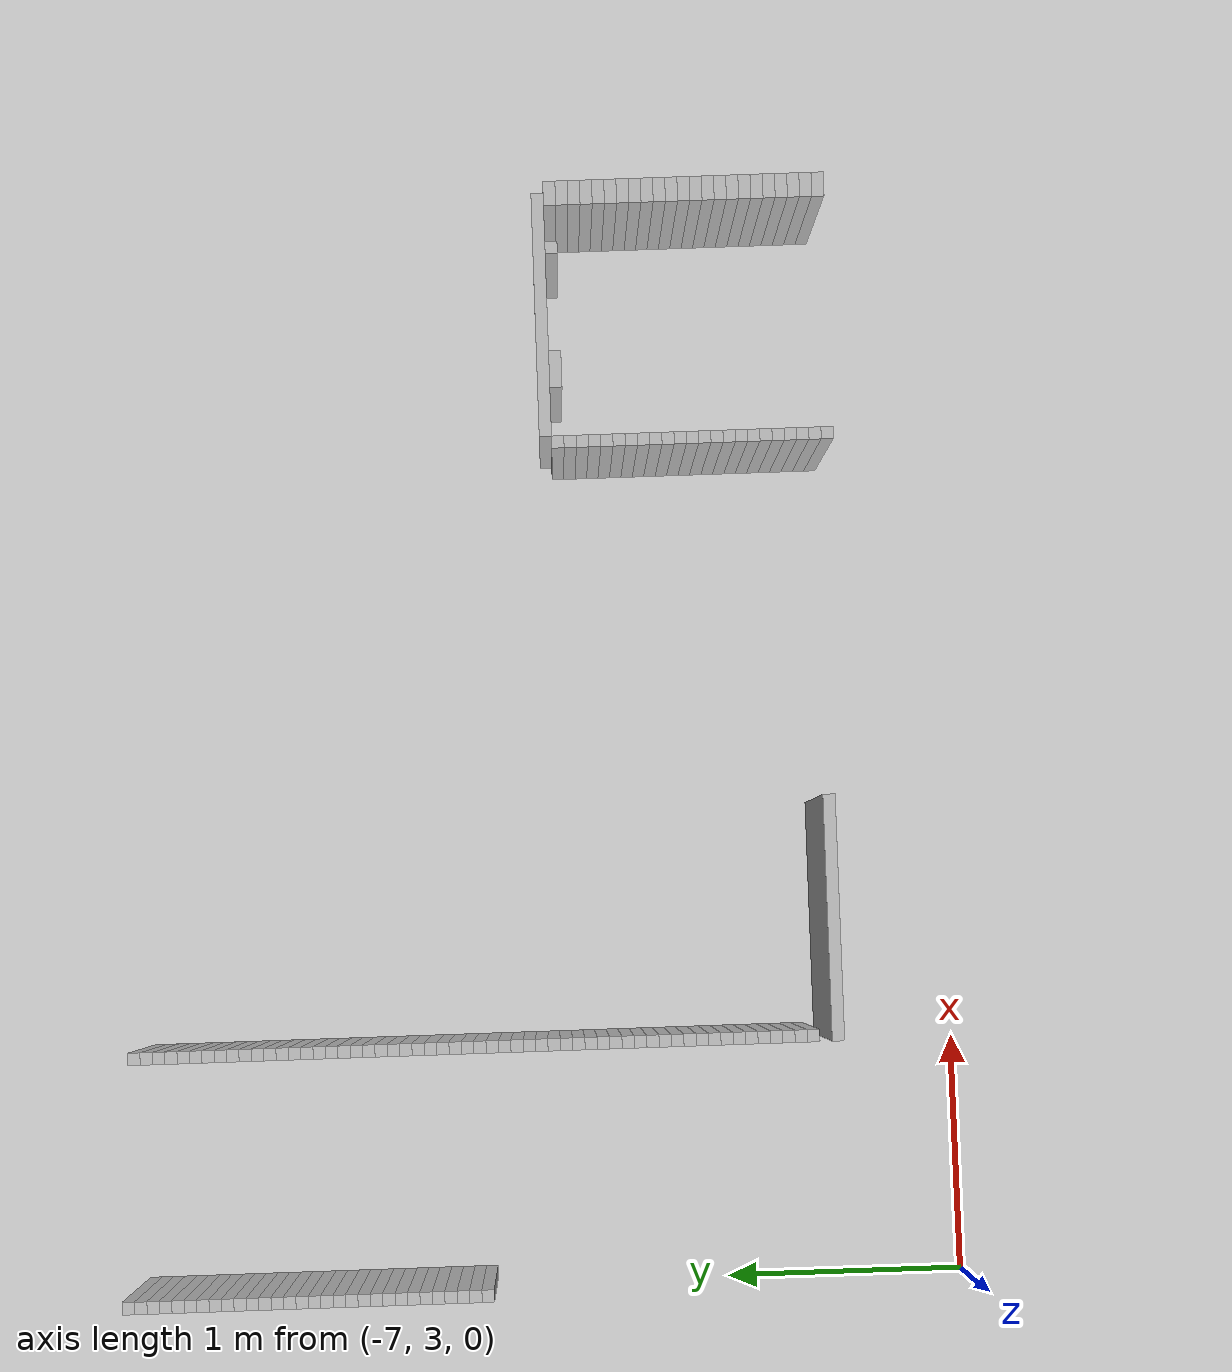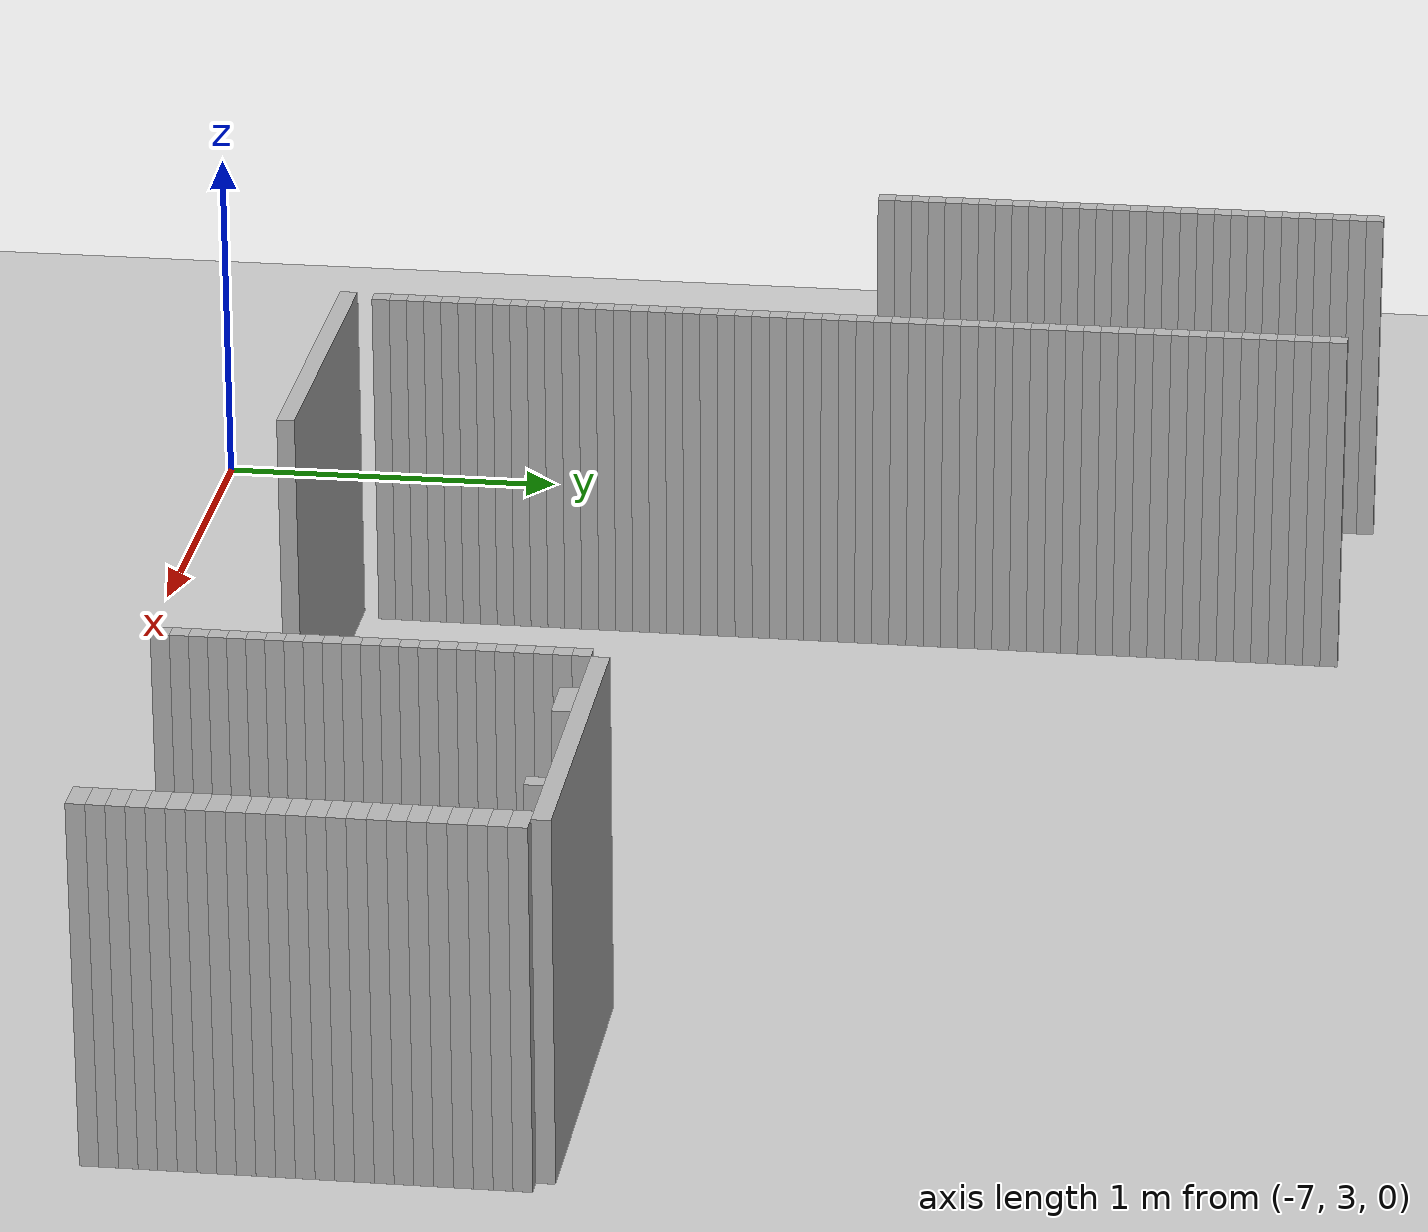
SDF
<sdf version="1.6">
 <world name="udh1_world">
  <include><uri>model://ground_plane</uri></include>
  <include><uri>model://sun</uri></include>
  <model name="wall_300">
   <static>true</static>
   <pose>-6.944999999999999 6.470000000000001 0.5 0 0 0</pose>
   <link name="link">
    <collision name="col"><geometry><box><size>0.05 0.05 1</size></box></geometry></collision>
    <visual name="vis"><geometry><box><size>0.05 0.05 1</size></box></geometry></visual>
   </link>
  </model>
  <model name="wall_306">
   <static>true</static>
   <pose>-6.944999999999999 6.42 0.5 0 0 0</pose>
   <link name="link">
    <collision name="col"><geometry><box><size>0.05 0.05 1</size></box></geometry></collision>
    <visual name="vis"><geometry><box><size>0.05 0.05 1</size></box></geometry></visual>
   </link>
  </model>
  <model name="wall_307">
   <static>true</static>
   <pose>-5.944999999999999 6.42 0.5 0 0 0</pose>
   <link name="link">
    <collision name="col"><geometry><box><size>0.05 0.05 1</size></box></geometry></collision>
    <visual name="vis"><geometry><box><size>0.05 0.05 1</size></box></geometry></visual>
   </link>
  </model>
  <model name="wall_312">
   <static>true</static>
   <pose>-6.944999999999999 6.369999999999999 0.5 0 0 0</pose>
   <link name="link">
    <collision name="col"><geometry><box><size>0.05 0.05 1</size></box></geometry></collision>
    <visual name="vis"><geometry><box><size>0.05 0.05 1</size></box></geometry></visual>
   </link>
  </model>
  <model name="wall_313">
   <static>true</static>
   <pose>-5.944999999999999 6.369999999999999 0.5 0 0 0</pose>
   <link name="link">
    <collision name="col"><geometry><box><size>0.05 0.05 1</size></box></geometry></collision>
    <visual name="vis"><geometry><box><size>0.05 0.05 1</size></box></geometry></visual>
   </link>
  </model>
  <model name="wall_318">
   <static>true</static>
   <pose>-6.944999999999999 6.32 0.5 0 0 0</pose>
   <link name="link">
    <collision name="col"><geometry><box><size>0.05 0.05 1</size></box></geometry></collision>
    <visual name="vis"><geometry><box><size>0.05 0.05 1</size></box></geometry></visual>
   </link>
  </model>
  <model name="wall_319">
   <static>true</static>
   <pose>-5.944999999999999 6.32 0.5 0 0 0</pose>
   <link name="link">
    <collision name="col"><geometry><box><size>0.05 0.05 1</size></box></geometry></collision>
    <visual name="vis"><geometry><box><size>0.05 0.05 1</size></box></geometry></visual>
   </link>
  </model>
  <model name="wall_324">
   <static>true</static>
   <pose>-6.944999999999999 6.27 0.5 0 0 0</pose>
   <link name="link">
    <collision name="col"><geometry><box><size>0.05 0.05 1</size></box></geometry></collision>
    <visual name="vis"><geometry><box><size>0.05 0.05 1</size></box></geometry></visual>
   </link>
  </model>
  <model name="wall_325">
   <static>true</static>
   <pose>-5.944999999999999 6.27 0.5 0 0 0</pose>
   <link name="link">
    <collision name="col"><geometry><box><size>0.05 0.05 1</size></box></geometry></collision>
    <visual name="vis"><geometry><box><size>0.05 0.05 1</size></box></geometry></visual>
   </link>
  </model>
  <model name="wall_330">
   <static>true</static>
   <pose>-6.944999999999999 6.220000000000001 0.5 0 0 0</pose>
   <link name="link">
    <collision name="col"><geometry><box><size>0.05 0.05 1</size></box></geometry></collision>
    <visual name="vis"><geometry><box><size>0.05 0.05 1</size></box></geometry></visual>
   </link>
  </model>
  <model name="wall_331">
   <static>true</static>
   <pose>-5.944999999999999 6.220000000000001 0.5 0 0 0</pose>
   <link name="link">
    <collision name="col"><geometry><box><size>0.05 0.05 1</size></box></geometry></collision>
    <visual name="vis"><geometry><box><size>0.05 0.05 1</size></box></geometry></visual>
   </link>
  </model>
  <model name="wall_336">
   <static>true</static>
   <pose>-6.944999999999999 6.17 0.5 0 0 0</pose>
   <link name="link">
    <collision name="col"><geometry><box><size>0.05 0.05 1</size></box></geometry></collision>
    <visual name="vis"><geometry><box><size>0.05 0.05 1</size></box></geometry></visual>
   </link>
  </model>
  <model name="wall_337">
   <static>true</static>
   <pose>-5.944999999999999 6.17 0.5 0 0 0</pose>
   <link name="link">
    <collision name="col"><geometry><box><size>0.05 0.05 1</size></box></geometry></collision>
    <visual name="vis"><geometry><box><size>0.05 0.05 1</size></box></geometry></visual>
   </link>
  </model>
  <model name="wall_342">
   <static>true</static>
   <pose>-6.944999999999999 6.119999999999999 0.5 0 0 0</pose>
   <link name="link">
    <collision name="col"><geometry><box><size>0.05 0.05 1</size></box></geometry></collision>
    <visual name="vis"><geometry><box><size>0.05 0.05 1</size></box></geometry></visual>
   </link>
  </model>
  <model name="wall_343">
   <static>true</static>
   <pose>-5.944999999999999 6.119999999999999 0.5 0 0 0</pose>
   <link name="link">
    <collision name="col"><geometry><box><size>0.05 0.05 1</size></box></geometry></collision>
    <visual name="vis"><geometry><box><size>0.05 0.05 1</size></box></geometry></visual>
   </link>
  </model>
  <model name="wall_356">
   <static>true</static>
   <pose>-6.944999999999999 6.07 0.5 0 0 0</pose>
   <link name="link">
    <collision name="col"><geometry><box><size>0.05 0.05 1</size></box></geometry></collision>
    <visual name="vis"><geometry><box><size>0.05 0.05 1</size></box></geometry></visual>
   </link>
  </model>
  <model name="wall_357">
   <static>true</static>
   <pose>-5.944999999999999 6.07 0.5 0 0 0</pose>
   <link name="link">
    <collision name="col"><geometry><box><size>0.05 0.05 1</size></box></geometry></collision>
    <visual name="vis"><geometry><box><size>0.05 0.05 1</size></box></geometry></visual>
   </link>
  </model>
  <model name="wall_362">
   <static>true</static>
   <pose>-6.944999999999999 6.02 0.5 0 0 0</pose>
   <link name="link">
    <collision name="col"><geometry><box><size>0.05 0.05 1</size></box></geometry></collision>
    <visual name="vis"><geometry><box><size>0.05 0.05 1</size></box></geometry></visual>
   </link>
  </model>
  <model name="wall_363">
   <static>true</static>
   <pose>-5.944999999999999 6.02 0.5 0 0 0</pose>
   <link name="link">
    <collision name="col"><geometry><box><size>0.05 0.05 1</size></box></geometry></collision>
    <visual name="vis"><geometry><box><size>0.05 0.05 1</size></box></geometry></visual>
   </link>
  </model>
  <model name="wall_368">
   <static>true</static>
   <pose>-6.944999999999999 5.970000000000001 0.5 0 0 0</pose>
   <link name="link">
    <collision name="col"><geometry><box><size>0.05 0.05 1</size></box></geometry></collision>
    <visual name="vis"><geometry><box><size>0.05 0.05 1</size></box></geometry></visual>
   </link>
  </model>
  <model name="wall_369">
   <static>true</static>
   <pose>-5.944999999999999 5.970000000000001 0.5 0 0 0</pose>
   <link name="link">
    <collision name="col"><geometry><box><size>0.05 0.05 1</size></box></geometry></collision>
    <visual name="vis"><geometry><box><size>0.05 0.05 1</size></box></geometry></visual>
   </link>
  </model>
  <model name="wall_374">
   <static>true</static>
   <pose>-6.944999999999999 5.92 0.5 0 0 0</pose>
   <link name="link">
    <collision name="col"><geometry><box><size>0.05 0.05 1</size></box></geometry></collision>
    <visual name="vis"><geometry><box><size>0.05 0.05 1</size></box></geometry></visual>
   </link>
  </model>
  <model name="wall_375">
   <static>true</static>
   <pose>-5.944999999999999 5.92 0.5 0 0 0</pose>
   <link name="link">
    <collision name="col"><geometry><box><size>0.05 0.05 1</size></box></geometry></collision>
    <visual name="vis"><geometry><box><size>0.05 0.05 1</size></box></geometry></visual>
   </link>
  </model>
  <model name="wall_380">
   <static>true</static>
   <pose>-6.944999999999999 5.869999999999999 0.5 0 0 0</pose>
   <link name="link">
    <collision name="col"><geometry><box><size>0.05 0.05 1</size></box></geometry></collision>
    <visual name="vis"><geometry><box><size>0.05 0.05 1</size></box></geometry></visual>
   </link>
  </model>
  <model name="wall_381">
   <static>true</static>
   <pose>-5.944999999999999 5.869999999999999 0.5 0 0 0</pose>
   <link name="link">
    <collision name="col"><geometry><box><size>0.05 0.05 1</size></box></geometry></collision>
    <visual name="vis"><geometry><box><size>0.05 0.05 1</size></box></geometry></visual>
   </link>
  </model>
  <model name="wall_386">
   <static>true</static>
   <pose>-6.944999999999999 5.82 0.5 0 0 0</pose>
   <link name="link">
    <collision name="col"><geometry><box><size>0.05 0.05 1</size></box></geometry></collision>
    <visual name="vis"><geometry><box><size>0.05 0.05 1</size></box></geometry></visual>
   </link>
  </model>
  <model name="wall_387">
   <static>true</static>
   <pose>-5.944999999999999 5.82 0.5 0 0 0</pose>
   <link name="link">
    <collision name="col"><geometry><box><size>0.05 0.05 1</size></box></geometry></collision>
    <visual name="vis"><geometry><box><size>0.05 0.05 1</size></box></geometry></visual>
   </link>
  </model>
  <model name="wall_392">
   <static>true</static>
   <pose>-6.944999999999999 5.77 0.5 0 0 0</pose>
   <link name="link">
    <collision name="col"><geometry><box><size>0.05 0.05 1</size></box></geometry></collision>
    <visual name="vis"><geometry><box><size>0.05 0.05 1</size></box></geometry></visual>
   </link>
  </model>
  <model name="wall_393">
   <static>true</static>
   <pose>-5.944999999999999 5.77 0.5 0 0 0</pose>
   <link name="link">
    <collision name="col"><geometry><box><size>0.05 0.05 1</size></box></geometry></collision>
    <visual name="vis"><geometry><box><size>0.05 0.05 1</size></box></geometry></visual>
   </link>
  </model>
  <model name="wall_398">
   <static>true</static>
   <pose>-6.944999999999999 5.720000000000001 0.5 0 0 0</pose>
   <link name="link">
    <collision name="col"><geometry><box><size>0.05 0.05 1</size></box></geometry></collision>
    <visual name="vis"><geometry><box><size>0.05 0.05 1</size></box></geometry></visual>
   </link>
  </model>
  <model name="wall_399">
   <static>true</static>
   <pose>-5.944999999999999 5.720000000000001 0.5 0 0 0</pose>
   <link name="link">
    <collision name="col"><geometry><box><size>0.05 0.05 1</size></box></geometry></collision>
    <visual name="vis"><geometry><box><size>0.05 0.05 1</size></box></geometry></visual>
   </link>
  </model>
  <model name="wall_404">
   <static>true</static>
   <pose>-6.944999999999999 5.67 0.5 0 0 0</pose>
   <link name="link">
    <collision name="col"><geometry><box><size>0.05 0.05 1</size></box></geometry></collision>
    <visual name="vis"><geometry><box><size>0.05 0.05 1</size></box></geometry></visual>
   </link>
  </model>
  <model name="wall_405">
   <static>true</static>
   <pose>-5.944999999999999 5.67 0.5 0 0 0</pose>
   <link name="link">
    <collision name="col"><geometry><box><size>0.05 0.05 1</size></box></geometry></collision>
    <visual name="vis"><geometry><box><size>0.05 0.05 1</size></box></geometry></visual>
   </link>
  </model>
  <model name="wall_410">
   <static>true</static>
   <pose>-6.944999999999999 5.619999999999999 0.5 0 0 0</pose>
   <link name="link">
    <collision name="col"><geometry><box><size>0.05 0.05 1</size></box></geometry></collision>
    <visual name="vis"><geometry><box><size>0.05 0.05 1</size></box></geometry></visual>
   </link>
  </model>
  <model name="wall_411">
   <static>true</static>
   <pose>-5.944999999999999 5.619999999999999 0.5 0 0 0</pose>
   <link name="link">
    <collision name="col"><geometry><box><size>0.05 0.05 1</size></box></geometry></collision>
    <visual name="vis"><geometry><box><size>0.05 0.05 1</size></box></geometry></visual>
   </link>
  </model>
  <model name="wall_416">
   <static>true</static>
   <pose>-6.944999999999999 5.57 0.5 0 0 0</pose>
   <link name="link">
    <collision name="col"><geometry><box><size>0.05 0.05 1</size></box></geometry></collision>
    <visual name="vis"><geometry><box><size>0.05 0.05 1</size></box></geometry></visual>
   </link>
  </model>
  <model name="wall_417">
   <static>true</static>
   <pose>-5.944999999999999 5.57 0.5 0 0 0</pose>
   <link name="link">
    <collision name="col"><geometry><box><size>0.05 0.05 1</size></box></geometry></collision>
    <visual name="vis"><geometry><box><size>0.05 0.05 1</size></box></geometry></visual>
   </link>
  </model>
  <model name="wall_423">
   <static>true</static>
   <pose>-6.944999999999999 5.52 0.5 0 0 0</pose>
   <link name="link">
    <collision name="col"><geometry><box><size>0.05 0.05 1</size></box></geometry></collision>
    <visual name="vis"><geometry><box><size>0.05 0.05 1</size></box></geometry></visual>
   </link>
  </model>
  <model name="wall_424">
   <static>true</static>
   <pose>-5.944999999999999 5.52 0.5 0 0 0</pose>
   <link name="link">
    <collision name="col"><geometry><box><size>0.05 0.05 1</size></box></geometry></collision>
    <visual name="vis"><geometry><box><size>0.05 0.05 1</size></box></geometry></visual>
   </link>
  </model>
  <model name="wall_432">
   <static>true</static>
   <pose>-6.944999999999999 5.470000000000001 0.5 0 0 0</pose>
   <link name="link">
    <collision name="col"><geometry><box><size>0.05 0.05 1</size></box></geometry></collision>
    <visual name="vis"><geometry><box><size>0.05 0.05 1</size></box></geometry></visual>
   </link>
  </model>
  <model name="wall_433">
   <static>true</static>
   <pose>-5.944999999999999 5.470000000000001 0.5 0 0 0</pose>
   <link name="link">
    <collision name="col"><geometry><box><size>0.05 0.05 1</size></box></geometry></collision>
    <visual name="vis"><geometry><box><size>0.05 0.05 1</size></box></geometry></visual>
   </link>
  </model>
  <model name="wall_441">
   <static>true</static>
   <pose>-6.944999999999999 5.42 0.5 0 0 0</pose>
   <link name="link">
    <collision name="col"><geometry><box><size>0.05 0.05 1</size></box></geometry></collision>
    <visual name="vis"><geometry><box><size>0.05 0.05 1</size></box></geometry></visual>
   </link>
  </model>
  <model name="wall_442">
   <static>true</static>
   <pose>-5.944999999999999 5.42 0.5 0 0 0</pose>
   <link name="link">
    <collision name="col"><geometry><box><size>0.05 0.05 1</size></box></geometry></collision>
    <visual name="vis"><geometry><box><size>0.05 0.05 1</size></box></geometry></visual>
   </link>
  </model>
  <model name="wall_450">
   <static>true</static>
   <pose>-6.944999999999999 5.369999999999999 0.5 0 0 0</pose>
   <link name="link">
    <collision name="col"><geometry><box><size>0.05 0.05 1</size></box></geometry></collision>
    <visual name="vis"><geometry><box><size>0.05 0.05 1</size></box></geometry></visual>
   </link>
  </model>
  <model name="wall_451">
   <static>true</static>
   <pose>-5.944999999999999 5.369999999999999 0.5 0 0 0</pose>
   <link name="link">
    <collision name="col"><geometry><box><size>0.05 0.05 1</size></box></geometry></collision>
    <visual name="vis"><geometry><box><size>0.05 0.05 1</size></box></geometry></visual>
   </link>
  </model>
  <model name="wall_459">
   <static>true</static>
   <pose>-6.944999999999999 5.32 0.5 0 0 0</pose>
   <link name="link">
    <collision name="col"><geometry><box><size>0.05 0.05 1</size></box></geometry></collision>
    <visual name="vis"><geometry><box><size>0.05 0.05 1</size></box></geometry></visual>
   </link>
  </model>
  <model name="wall_460">
   <static>true</static>
   <pose>-5.944999999999999 5.32 0.5 0 0 0</pose>
   <link name="link">
    <collision name="col"><geometry><box><size>0.05 0.05 1</size></box></geometry></collision>
    <visual name="vis"><geometry><box><size>0.05 0.05 1</size></box></geometry></visual>
   </link>
  </model>
  <model name="wall_468">
   <static>true</static>
   <pose>-6.944999999999999 5.27 0.5 0 0 0</pose>
   <link name="link">
    <collision name="col"><geometry><box><size>0.05 0.05 1</size></box></geometry></collision>
    <visual name="vis"><geometry><box><size>0.05 0.05 1</size></box></geometry></visual>
   </link>
  </model>
  <model name="wall_469">
   <static>true</static>
   <pose>-5.944999999999999 5.27 0.5 0 0 0</pose>
   <link name="link">
    <collision name="col"><geometry><box><size>0.05 0.05 1</size></box></geometry></collision>
    <visual name="vis"><geometry><box><size>0.05 0.05 1</size></box></geometry></visual>
   </link>
  </model>
  <model name="wall_477">
   <static>true</static>
   <pose>-6.944999999999999 5.220000000000001 0.5 0 0 0</pose>
   <link name="link">
    <collision name="col"><geometry><box><size>0.05 0.05 1</size></box></geometry></collision>
    <visual name="vis"><geometry><box><size>0.05 0.05 1</size></box></geometry></visual>
   </link>
  </model>
  <model name="wall_478">
   <static>true</static>
   <pose>-5.944999999999999 5.220000000000001 0.5 0 0 0</pose>
   <link name="link">
    <collision name="col"><geometry><box><size>0.05 0.05 1</size></box></geometry></collision>
    <visual name="vis"><geometry><box><size>0.05 0.05 1</size></box></geometry></visual>
   </link>
  </model>
  <model name="wall_486">
   <static>true</static>
   <pose>-6.944999999999999 5.17 0.5 0 0 0</pose>
   <link name="link">
    <collision name="col"><geometry><box><size>0.05 0.05 1</size></box></geometry></collision>
    <visual name="vis"><geometry><box><size>0.05 0.05 1</size></box></geometry></visual>
   </link>
  </model>
  <model name="wall_487">
   <static>true</static>
   <pose>-5.944999999999999 5.17 0.5 0 0 0</pose>
   <link name="link">
    <collision name="col"><geometry><box><size>0.05 0.05 1</size></box></geometry></collision>
    <visual name="vis"><geometry><box><size>0.05 0.05 1</size></box></geometry></visual>
   </link>
  </model>
  <model name="wall_495">
   <static>true</static>
   <pose>-6.944999999999999 5.119999999999999 0.5 0 0 0</pose>
   <link name="link">
    <collision name="col"><geometry><box><size>0.05 0.05 1</size></box></geometry></collision>
    <visual name="vis"><geometry><box><size>0.05 0.05 1</size></box></geometry></visual>
   </link>
  </model>
  <model name="wall_496">
   <static>true</static>
   <pose>-5.944999999999999 5.119999999999999 0.5 0 0 0</pose>
   <link name="link">
    <collision name="col"><geometry><box><size>0.05 0.05 1</size></box></geometry></collision>
    <visual name="vis"><geometry><box><size>0.05 0.05 1</size></box></geometry></visual>
   </link>
  </model>
  <model name="wall_504">
   <static>true</static>
   <pose>-6.944999999999999 5.07 0.5 0 0 0</pose>
   <link name="link">
    <collision name="col"><geometry><box><size>0.05 0.05 1</size></box></geometry></collision>
    <visual name="vis"><geometry><box><size>0.05 0.05 1</size></box></geometry></visual>
   </link>
  </model>
  <model name="wall_505">
   <static>true</static>
   <pose>-5.944999999999999 5.07 0.5 0 0 0</pose>
   <link name="link">
    <collision name="col"><geometry><box><size>0.05 0.05 1</size></box></geometry></collision>
    <visual name="vis"><geometry><box><size>0.05 0.05 1</size></box></geometry></visual>
   </link>
  </model>
  <model name="wall_513">
   <static>true</static>
   <pose>-6.944999999999999 5.02 0.5 0 0 0</pose>
   <link name="link">
    <collision name="col"><geometry><box><size>0.05 0.05 1</size></box></geometry></collision>
    <visual name="vis"><geometry><box><size>0.05 0.05 1</size></box></geometry></visual>
   </link>
  </model>
  <model name="wall_514">
   <static>true</static>
   <pose>-5.944999999999999 5.02 0.5 0 0 0</pose>
   <link name="link">
    <collision name="col"><geometry><box><size>0.05 0.05 1</size></box></geometry></collision>
    <visual name="vis"><geometry><box><size>0.05 0.05 1</size></box></geometry></visual>
   </link>
  </model>
  <model name="wall_523">
   <static>true</static>
   <pose>-5.944999999999999 4.970000000000001 0.5 0 0 0</pose>
   <link name="link">
    <collision name="col"><geometry><box><size>0.05 0.05 1</size></box></geometry></collision>
    <visual name="vis"><geometry><box><size>0.05 0.05 1</size></box></geometry></visual>
   </link>
  </model>
  <model name="wall_532">
   <static>true</static>
   <pose>-5.944999999999999 4.92 0.5 0 0 0</pose>
   <link name="link">
    <collision name="col"><geometry><box><size>0.05 0.05 1</size></box></geometry></collision>
    <visual name="vis"><geometry><box><size>0.05 0.05 1</size></box></geometry></visual>
   </link>
  </model>
  <model name="wall_541">
   <static>true</static>
   <pose>-5.944999999999999 4.869999999999999 0.5 0 0 0</pose>
   <link name="link">
    <collision name="col"><geometry><box><size>0.05 0.05 1</size></box></geometry></collision>
    <visual name="vis"><geometry><box><size>0.05 0.05 1</size></box></geometry></visual>
   </link>
  </model>
  <model name="wall_550">
   <static>true</static>
   <pose>-5.944999999999999 4.82 0.5 0 0 0</pose>
   <link name="link">
    <collision name="col"><geometry><box><size>0.05 0.05 1</size></box></geometry></collision>
    <visual name="vis"><geometry><box><size>0.05 0.05 1</size></box></geometry></visual>
   </link>
  </model>
  <model name="wall_558">
   <static>true</static>
   <pose>-5.944999999999999 4.77 0.5 0 0 0</pose>
   <link name="link">
    <collision name="col"><geometry><box><size>0.05 0.05 1</size></box></geometry></collision>
    <visual name="vis"><geometry><box><size>0.05 0.05 1</size></box></geometry></visual>
   </link>
  </model>
  <model name="wall_567">
   <static>true</static>
   <pose>-5.944999999999999 4.720000000000001 0.5 0 0 0</pose>
   <link name="link">
    <collision name="col"><geometry><box><size>0.05 0.05 1</size></box></geometry></collision>
    <visual name="vis"><geometry><box><size>0.05 0.05 1</size></box></geometry></visual>
   </link>
  </model>
  <model name="wall_576">
   <static>true</static>
   <pose>-5.944999999999999 4.67 0.5 0 0 0</pose>
   <link name="link">
    <collision name="col"><geometry><box><size>0.05 0.05 1</size></box></geometry></collision>
    <visual name="vis"><geometry><box><size>0.05 0.05 1</size></box></geometry></visual>
   </link>
  </model>
  <model name="wall_577">
   <static>true</static>
   <pose>-2.969999999999999 4.67 0.5 0 0 0</pose>
   <link name="link">
    <collision name="col"><geometry><box><size>1.0 0.05 1</size></box></geometry></collision>
    <visual name="vis"><geometry><box><size>1.0 0.05 1</size></box></geometry></visual>
   </link>
  </model>
  <model name="wall_586">
   <static>true</static>
   <pose>-5.944999999999999 4.619999999999999 0.5 0 0 0</pose>
   <link name="link">
    <collision name="col"><geometry><box><size>0.05 0.05 1</size></box></geometry></collision>
    <visual name="vis"><geometry><box><size>0.05 0.05 1</size></box></geometry></visual>
   </link>
  </model>
  <model name="wall_587">
   <static>true</static>
   <pose>-3.494999999999999 4.619999999999999 0.5 0 0 0</pose>
   <link name="link">
    <collision name="col"><geometry><box><size>0.05 0.05 1</size></box></geometry></collision>
    <visual name="vis"><geometry><box><size>0.05 0.05 1</size></box></geometry></visual>
   </link>
  </model>
  <model name="wall_588">
   <static>true</static>
   <pose>-3.1949999999999994 4.619999999999999 0.5 0 0 0</pose>
   <link name="link">
    <collision name="col"><geometry><box><size>0.15000000000000002 0.05 1</size></box></geometry></collision>
    <visual name="vis"><geometry><box><size>0.15000000000000002 0.05 1</size></box></geometry></visual>
   </link>
  </model>
  <model name="wall_589">
   <static>true</static>
   <pose>-2.6949999999999994 4.619999999999999 0.5 0 0 0</pose>
   <link name="link">
    <collision name="col"><geometry><box><size>0.05 0.05 1</size></box></geometry></collision>
    <visual name="vis"><geometry><box><size>0.05 0.05 1</size></box></geometry></visual>
   </link>
  </model>
  <model name="wall_590">
   <static>true</static>
   <pose>-2.469999999999999 4.619999999999999 0.5 0 0 0</pose>
   <link name="link">
    <collision name="col"><geometry><box><size>0.1 0.05 1</size></box></geometry></collision>
    <visual name="vis"><geometry><box><size>0.1 0.05 1</size></box></geometry></visual>
   </link>
  </model>
  <model name="wall_599">
   <static>true</static>
   <pose>-5.944999999999999 4.57 0.5 0 0 0</pose>
   <link name="link">
    <collision name="col"><geometry><box><size>0.05 0.05 1</size></box></geometry></collision>
    <visual name="vis"><geometry><box><size>0.05 0.05 1</size></box></geometry></visual>
   </link>
  </model>
  <model name="wall_600">
   <static>true</static>
   <pose>-3.494999999999999 4.57 0.5 0 0 0</pose>
   <link name="link">
    <collision name="col"><geometry><box><size>0.05 0.05 1</size></box></geometry></collision>
    <visual name="vis"><geometry><box><size>0.05 0.05 1</size></box></geometry></visual>
   </link>
  </model>
  <model name="wall_601">
   <static>true</static>
   <pose>-2.469999999999999 4.57 0.5 0 0 0</pose>
   <link name="link">
    <collision name="col"><geometry><box><size>0.1 0.05 1</size></box></geometry></collision>
    <visual name="vis"><geometry><box><size>0.1 0.05 1</size></box></geometry></visual>
   </link>
  </model>
  <model name="wall_612">
   <static>true</static>
   <pose>-5.944999999999999 4.52 0.5 0 0 0</pose>
   <link name="link">
    <collision name="col"><geometry><box><size>0.05 0.05 1</size></box></geometry></collision>
    <visual name="vis"><geometry><box><size>0.05 0.05 1</size></box></geometry></visual>
   </link>
  </model>
  <model name="wall_613">
   <static>true</static>
   <pose>-3.494999999999999 4.52 0.5 0 0 0</pose>
   <link name="link">
    <collision name="col"><geometry><box><size>0.05 0.05 1</size></box></geometry></collision>
    <visual name="vis"><geometry><box><size>0.05 0.05 1</size></box></geometry></visual>
   </link>
  </model>
  <model name="wall_614">
   <static>true</static>
   <pose>-2.469999999999999 4.52 0.5 0 0 0</pose>
   <link name="link">
    <collision name="col"><geometry><box><size>0.1 0.05 1</size></box></geometry></collision>
    <visual name="vis"><geometry><box><size>0.1 0.05 1</size></box></geometry></visual>
   </link>
  </model>
  <model name="wall_622">
   <static>true</static>
   <pose>-5.944999999999999 4.470000000000001 0.5 0 0 0</pose>
   <link name="link">
    <collision name="col"><geometry><box><size>0.05 0.05 1</size></box></geometry></collision>
    <visual name="vis"><geometry><box><size>0.05 0.05 1</size></box></geometry></visual>
   </link>
  </model>
  <model name="wall_623">
   <static>true</static>
   <pose>-3.494999999999999 4.470000000000001 0.5 0 0 0</pose>
   <link name="link">
    <collision name="col"><geometry><box><size>0.05 0.05 1</size></box></geometry></collision>
    <visual name="vis"><geometry><box><size>0.05 0.05 1</size></box></geometry></visual>
   </link>
  </model>
  <model name="wall_624">
   <static>true</static>
   <pose>-2.469999999999999 4.470000000000001 0.5 0 0 0</pose>
   <link name="link">
    <collision name="col"><geometry><box><size>0.1 0.05 1</size></box></geometry></collision>
    <visual name="vis"><geometry><box><size>0.1 0.05 1</size></box></geometry></visual>
   </link>
  </model>
  <model name="wall_632">
   <static>true</static>
   <pose>-5.944999999999999 4.42 0.5 0 0 0</pose>
   <link name="link">
    <collision name="col"><geometry><box><size>0.05 0.05 1</size></box></geometry></collision>
    <visual name="vis"><geometry><box><size>0.05 0.05 1</size></box></geometry></visual>
   </link>
  </model>
  <model name="wall_633">
   <static>true</static>
   <pose>-3.494999999999999 4.42 0.5 0 0 0</pose>
   <link name="link">
    <collision name="col"><geometry><box><size>0.05 0.05 1</size></box></geometry></collision>
    <visual name="vis"><geometry><box><size>0.05 0.05 1</size></box></geometry></visual>
   </link>
  </model>
  <model name="wall_634">
   <static>true</static>
   <pose>-2.469999999999999 4.42 0.5 0 0 0</pose>
   <link name="link">
    <collision name="col"><geometry><box><size>0.1 0.05 1</size></box></geometry></collision>
    <visual name="vis"><geometry><box><size>0.1 0.05 1</size></box></geometry></visual>
   </link>
  </model>
  <model name="wall_641">
   <static>true</static>
   <pose>-5.944999999999999 4.369999999999999 0.5 0 0 0</pose>
   <link name="link">
    <collision name="col"><geometry><box><size>0.05 0.05 1</size></box></geometry></collision>
    <visual name="vis"><geometry><box><size>0.05 0.05 1</size></box></geometry></visual>
   </link>
  </model>
  <model name="wall_642">
   <static>true</static>
   <pose>-3.494999999999999 4.369999999999999 0.5 0 0 0</pose>
   <link name="link">
    <collision name="col"><geometry><box><size>0.05 0.05 1</size></box></geometry></collision>
    <visual name="vis"><geometry><box><size>0.05 0.05 1</size></box></geometry></visual>
   </link>
  </model>
  <model name="wall_643">
   <static>true</static>
   <pose>-2.469999999999999 4.369999999999999 0.5 0 0 0</pose>
   <link name="link">
    <collision name="col"><geometry><box><size>0.1 0.05 1</size></box></geometry></collision>
    <visual name="vis"><geometry><box><size>0.1 0.05 1</size></box></geometry></visual>
   </link>
  </model>
  <model name="wall_651">
   <static>true</static>
   <pose>-5.944999999999999 4.32 0.5 0 0 0</pose>
   <link name="link">
    <collision name="col"><geometry><box><size>0.05 0.05 1</size></box></geometry></collision>
    <visual name="vis"><geometry><box><size>0.05 0.05 1</size></box></geometry></visual>
   </link>
  </model>
  <model name="wall_652">
   <static>true</static>
   <pose>-3.494999999999999 4.32 0.5 0 0 0</pose>
   <link name="link">
    <collision name="col"><geometry><box><size>0.05 0.05 1</size></box></geometry></collision>
    <visual name="vis"><geometry><box><size>0.05 0.05 1</size></box></geometry></visual>
   </link>
  </model>
  <model name="wall_653">
   <static>true</static>
   <pose>-2.469999999999999 4.32 0.5 0 0 0</pose>
   <link name="link">
    <collision name="col"><geometry><box><size>0.1 0.05 1</size></box></geometry></collision>
    <visual name="vis"><geometry><box><size>0.1 0.05 1</size></box></geometry></visual>
   </link>
  </model>
  <model name="wall_661">
   <static>true</static>
   <pose>-5.944999999999999 4.27 0.5 0 0 0</pose>
   <link name="link">
    <collision name="col"><geometry><box><size>0.05 0.05 1</size></box></geometry></collision>
    <visual name="vis"><geometry><box><size>0.05 0.05 1</size></box></geometry></visual>
   </link>
  </model>
  <model name="wall_662">
   <static>true</static>
   <pose>-3.494999999999999 4.27 0.5 0 0 0</pose>
   <link name="link">
    <collision name="col"><geometry><box><size>0.05 0.05 1</size></box></geometry></collision>
    <visual name="vis"><geometry><box><size>0.05 0.05 1</size></box></geometry></visual>
   </link>
  </model>
  <model name="wall_663">
   <static>true</static>
   <pose>-2.469999999999999 4.27 0.5 0 0 0</pose>
   <link name="link">
    <collision name="col"><geometry><box><size>0.1 0.05 1</size></box></geometry></collision>
    <visual name="vis"><geometry><box><size>0.1 0.05 1</size></box></geometry></visual>
   </link>
  </model>
  <model name="wall_670">
   <static>true</static>
   <pose>-5.944999999999999 4.220000000000001 0.5 0 0 0</pose>
   <link name="link">
    <collision name="col"><geometry><box><size>0.05 0.05 1</size></box></geometry></collision>
    <visual name="vis"><geometry><box><size>0.05 0.05 1</size></box></geometry></visual>
   </link>
  </model>
  <model name="wall_671">
   <static>true</static>
   <pose>-3.494999999999999 4.220000000000001 0.5 0 0 0</pose>
   <link name="link">
    <collision name="col"><geometry><box><size>0.05 0.05 1</size></box></geometry></collision>
    <visual name="vis"><geometry><box><size>0.05 0.05 1</size></box></geometry></visual>
   </link>
  </model>
  <model name="wall_672">
   <static>true</static>
   <pose>-2.469999999999999 4.220000000000001 0.5 0 0 0</pose>
   <link name="link">
    <collision name="col"><geometry><box><size>0.1 0.05 1</size></box></geometry></collision>
    <visual name="vis"><geometry><box><size>0.1 0.05 1</size></box></geometry></visual>
   </link>
  </model>
  <model name="wall_680">
   <static>true</static>
   <pose>-5.944999999999999 4.17 0.5 0 0 0</pose>
   <link name="link">
    <collision name="col"><geometry><box><size>0.05 0.05 1</size></box></geometry></collision>
    <visual name="vis"><geometry><box><size>0.05 0.05 1</size></box></geometry></visual>
   </link>
  </model>
  <model name="wall_681">
   <static>true</static>
   <pose>-3.494999999999999 4.17 0.5 0 0 0</pose>
   <link name="link">
    <collision name="col"><geometry><box><size>0.05 0.05 1</size></box></geometry></collision>
    <visual name="vis"><geometry><box><size>0.05 0.05 1</size></box></geometry></visual>
   </link>
  </model>
  <model name="wall_682">
   <static>true</static>
   <pose>-2.469999999999999 4.17 0.5 0 0 0</pose>
   <link name="link">
    <collision name="col"><geometry><box><size>0.1 0.05 1</size></box></geometry></collision>
    <visual name="vis"><geometry><box><size>0.1 0.05 1</size></box></geometry></visual>
   </link>
  </model>
  <model name="wall_689">
   <static>true</static>
   <pose>-5.944999999999999 4.119999999999999 0.5 0 0 0</pose>
   <link name="link">
    <collision name="col"><geometry><box><size>0.05 0.05 1</size></box></geometry></collision>
    <visual name="vis"><geometry><box><size>0.05 0.05 1</size></box></geometry></visual>
   </link>
  </model>
  <model name="wall_690">
   <static>true</static>
   <pose>-3.494999999999999 4.119999999999999 0.5 0 0 0</pose>
   <link name="link">
    <collision name="col"><geometry><box><size>0.05 0.05 1</size></box></geometry></collision>
    <visual name="vis"><geometry><box><size>0.05 0.05 1</size></box></geometry></visual>
   </link>
  </model>
  <model name="wall_691">
   <static>true</static>
   <pose>-2.469999999999999 4.119999999999999 0.5 0 0 0</pose>
   <link name="link">
    <collision name="col"><geometry><box><size>0.1 0.05 1</size></box></geometry></collision>
    <visual name="vis"><geometry><box><size>0.1 0.05 1</size></box></geometry></visual>
   </link>
  </model>
  <model name="wall_699">
   <static>true</static>
   <pose>-5.944999999999999 4.07 0.5 0 0 0</pose>
   <link name="link">
    <collision name="col"><geometry><box><size>0.05 0.05 1</size></box></geometry></collision>
    <visual name="vis"><geometry><box><size>0.05 0.05 1</size></box></geometry></visual>
   </link>
  </model>
  <model name="wall_700">
   <static>true</static>
   <pose>-3.494999999999999 4.07 0.5 0 0 0</pose>
   <link name="link">
    <collision name="col"><geometry><box><size>0.05 0.05 1</size></box></geometry></collision>
    <visual name="vis"><geometry><box><size>0.05 0.05 1</size></box></geometry></visual>
   </link>
  </model>
  <model name="wall_701">
   <static>true</static>
   <pose>-2.469999999999999 4.07 0.5 0 0 0</pose>
   <link name="link">
    <collision name="col"><geometry><box><size>0.1 0.05 1</size></box></geometry></collision>
    <visual name="vis"><geometry><box><size>0.1 0.05 1</size></box></geometry></visual>
   </link>
  </model>
  <model name="wall_709">
   <static>true</static>
   <pose>-5.944999999999999 4.02 0.5 0 0 0</pose>
   <link name="link">
    <collision name="col"><geometry><box><size>0.05 0.05 1</size></box></geometry></collision>
    <visual name="vis"><geometry><box><size>0.05 0.05 1</size></box></geometry></visual>
   </link>
  </model>
  <model name="wall_710">
   <static>true</static>
   <pose>-3.494999999999999 4.02 0.5 0 0 0</pose>
   <link name="link">
    <collision name="col"><geometry><box><size>0.05 0.05 1</size></box></geometry></collision>
    <visual name="vis"><geometry><box><size>0.05 0.05 1</size></box></geometry></visual>
   </link>
  </model>
  <model name="wall_711">
   <static>true</static>
   <pose>-2.469999999999999 4.02 0.5 0 0 0</pose>
   <link name="link">
    <collision name="col"><geometry><box><size>0.1 0.05 1</size></box></geometry></collision>
    <visual name="vis"><geometry><box><size>0.1 0.05 1</size></box></geometry></visual>
   </link>
  </model>
  <model name="wall_719">
   <static>true</static>
   <pose>-5.944999999999999 3.9700000000000006 0.5 0 0 0</pose>
   <link name="link">
    <collision name="col"><geometry><box><size>0.05 0.05 1</size></box></geometry></collision>
    <visual name="vis"><geometry><box><size>0.05 0.05 1</size></box></geometry></visual>
   </link>
  </model>
  <model name="wall_720">
   <static>true</static>
   <pose>-3.494999999999999 3.9700000000000006 0.5 0 0 0</pose>
   <link name="link">
    <collision name="col"><geometry><box><size>0.05 0.05 1</size></box></geometry></collision>
    <visual name="vis"><geometry><box><size>0.05 0.05 1</size></box></geometry></visual>
   </link>
  </model>
  <model name="wall_721">
   <static>true</static>
   <pose>-2.469999999999999 3.9700000000000006 0.5 0 0 0</pose>
   <link name="link">
    <collision name="col"><geometry><box><size>0.1 0.05 1</size></box></geometry></collision>
    <visual name="vis"><geometry><box><size>0.1 0.05 1</size></box></geometry></visual>
   </link>
  </model>
  <model name="wall_729">
   <static>true</static>
   <pose>-5.944999999999999 3.92 0.5 0 0 0</pose>
   <link name="link">
    <collision name="col"><geometry><box><size>0.05 0.05 1</size></box></geometry></collision>
    <visual name="vis"><geometry><box><size>0.05 0.05 1</size></box></geometry></visual>
   </link>
  </model>
  <model name="wall_730">
   <static>true</static>
   <pose>-3.494999999999999 3.92 0.5 0 0 0</pose>
   <link name="link">
    <collision name="col"><geometry><box><size>0.05 0.05 1</size></box></geometry></collision>
    <visual name="vis"><geometry><box><size>0.05 0.05 1</size></box></geometry></visual>
   </link>
  </model>
  <model name="wall_731">
   <static>true</static>
   <pose>-2.469999999999999 3.92 0.5 0 0 0</pose>
   <link name="link">
    <collision name="col"><geometry><box><size>0.1 0.05 1</size></box></geometry></collision>
    <visual name="vis"><geometry><box><size>0.1 0.05 1</size></box></geometry></visual>
   </link>
  </model>
  <model name="wall_739">
   <static>true</static>
   <pose>-5.944999999999999 3.869999999999999 0.5 0 0 0</pose>
   <link name="link">
    <collision name="col"><geometry><box><size>0.05 0.05 1</size></box></geometry></collision>
    <visual name="vis"><geometry><box><size>0.05 0.05 1</size></box></geometry></visual>
   </link>
  </model>
  <model name="wall_740">
   <static>true</static>
   <pose>-3.494999999999999 3.869999999999999 0.5 0 0 0</pose>
   <link name="link">
    <collision name="col"><geometry><box><size>0.05 0.05 1</size></box></geometry></collision>
    <visual name="vis"><geometry><box><size>0.05 0.05 1</size></box></geometry></visual>
   </link>
  </model>
  <model name="wall_741">
   <static>true</static>
   <pose>-2.469999999999999 3.869999999999999 0.5 0 0 0</pose>
   <link name="link">
    <collision name="col"><geometry><box><size>0.1 0.05 1</size></box></geometry></collision>
    <visual name="vis"><geometry><box><size>0.1 0.05 1</size></box></geometry></visual>
   </link>
  </model>
  <model name="wall_749">
   <static>true</static>
   <pose>-5.944999999999999 3.8200000000000003 0.5 0 0 0</pose>
   <link name="link">
    <collision name="col"><geometry><box><size>0.05 0.05 1</size></box></geometry></collision>
    <visual name="vis"><geometry><box><size>0.05 0.05 1</size></box></geometry></visual>
   </link>
  </model>
  <model name="wall_750">
   <static>true</static>
   <pose>-3.494999999999999 3.8200000000000003 0.5 0 0 0</pose>
   <link name="link">
    <collision name="col"><geometry><box><size>0.05 0.05 1</size></box></geometry></collision>
    <visual name="vis"><geometry><box><size>0.05 0.05 1</size></box></geometry></visual>
   </link>
  </model>
  <model name="wall_751">
   <static>true</static>
   <pose>-2.469999999999999 3.8200000000000003 0.5 0 0 0</pose>
   <link name="link">
    <collision name="col"><geometry><box><size>0.1 0.05 1</size></box></geometry></collision>
    <visual name="vis"><geometry><box><size>0.1 0.05 1</size></box></geometry></visual>
   </link>
  </model>
  <model name="wall_759">
   <static>true</static>
   <pose>-5.944999999999999 3.7699999999999996 0.5 0 0 0</pose>
   <link name="link">
    <collision name="col"><geometry><box><size>0.05 0.05 1</size></box></geometry></collision>
    <visual name="vis"><geometry><box><size>0.05 0.05 1</size></box></geometry></visual>
   </link>
  </model>
  <model name="wall_760">
   <static>true</static>
   <pose>-3.494999999999999 3.7699999999999996 0.5 0 0 0</pose>
   <link name="link">
    <collision name="col"><geometry><box><size>0.05 0.05 1</size></box></geometry></collision>
    <visual name="vis"><geometry><box><size>0.05 0.05 1</size></box></geometry></visual>
   </link>
  </model>
  <model name="wall_761">
   <static>true</static>
   <pose>-2.469999999999999 3.7699999999999996 0.5 0 0 0</pose>
   <link name="link">
    <collision name="col"><geometry><box><size>0.1 0.05 1</size></box></geometry></collision>
    <visual name="vis"><geometry><box><size>0.1 0.05 1</size></box></geometry></visual>
   </link>
  </model>
  <model name="wall_769">
   <static>true</static>
   <pose>-5.944999999999999 3.7200000000000006 0.5 0 0 0</pose>
   <link name="link">
    <collision name="col"><geometry><box><size>0.05 0.05 1</size></box></geometry></collision>
    <visual name="vis"><geometry><box><size>0.05 0.05 1</size></box></geometry></visual>
   </link>
  </model>
  <model name="wall_770">
   <static>true</static>
   <pose>-3.494999999999999 3.7200000000000006 0.5 0 0 0</pose>
   <link name="link">
    <collision name="col"><geometry><box><size>0.05 0.05 1</size></box></geometry></collision>
    <visual name="vis"><geometry><box><size>0.05 0.05 1</size></box></geometry></visual>
   </link>
  </model>
  <model name="wall_771">
   <static>true</static>
   <pose>-2.469999999999999 3.7200000000000006 0.5 0 0 0</pose>
   <link name="link">
    <collision name="col"><geometry><box><size>0.1 0.05 1</size></box></geometry></collision>
    <visual name="vis"><geometry><box><size>0.1 0.05 1</size></box></geometry></visual>
   </link>
  </model>
  <model name="wall_779">
   <static>true</static>
   <pose>-5.944999999999999 3.67 0.5 0 0 0</pose>
   <link name="link">
    <collision name="col"><geometry><box><size>0.05 0.05 1</size></box></geometry></collision>
    <visual name="vis"><geometry><box><size>0.05 0.05 1</size></box></geometry></visual>
   </link>
  </model>
  <model name="wall_780">
   <static>true</static>
   <pose>-3.494999999999999 3.67 0.5 0 0 0</pose>
   <link name="link">
    <collision name="col"><geometry><box><size>0.05 0.05 1</size></box></geometry></collision>
    <visual name="vis"><geometry><box><size>0.05 0.05 1</size></box></geometry></visual>
   </link>
  </model>
  <model name="wall_781">
   <static>true</static>
   <pose>-2.469999999999999 3.67 0.5 0 0 0</pose>
   <link name="link">
    <collision name="col"><geometry><box><size>0.1 0.05 1</size></box></geometry></collision>
    <visual name="vis"><geometry><box><size>0.1 0.05 1</size></box></geometry></visual>
   </link>
  </model>
  <model name="wall_789">
   <static>true</static>
   <pose>-3.494999999999999 3.619999999999999 0.5 0 0 0</pose>
   <link name="link">
    <collision name="col"><geometry><box><size>0.05 0.05 1</size></box></geometry></collision>
    <visual name="vis"><geometry><box><size>0.05 0.05 1</size></box></geometry></visual>
   </link>
  </model>
  <model name="wall_790">
   <static>true</static>
   <pose>-2.469999999999999 3.619999999999999 0.5 0 0 0</pose>
   <link name="link">
    <collision name="col"><geometry><box><size>0.1 0.05 1</size></box></geometry></collision>
    <visual name="vis"><geometry><box><size>0.1 0.05 1</size></box></geometry></visual>
   </link>
  </model>
  <model name="wall_798">
   <static>true</static>
   <pose>-5.469999999999999 3.5700000000000003 0.5 0 0 0</pose>
   <link name="link">
    <collision name="col"><geometry><box><size>1.0 0.05 1</size></box></geometry></collision>
    <visual name="vis"><geometry><box><size>1.0 0.05 1</size></box></geometry></visual>
   </link>
  </model>
  <model name="wall_799">
   <static>true</static>
   <pose>-3.494999999999999 3.5700000000000003 0.5 0 0 0</pose>
   <link name="link">
    <collision name="col"><geometry><box><size>0.05 0.05 1</size></box></geometry></collision>
    <visual name="vis"><geometry><box><size>0.05 0.05 1</size></box></geometry></visual>
   </link>
  </model>
  <model name="wall_800">
   <static>true</static>
   <pose>-2.469999999999999 3.5700000000000003 0.5 0 0 0</pose>
   <link name="link">
    <collision name="col"><geometry><box><size>0.1 0.05 1</size></box></geometry></collision>
    <visual name="vis"><geometry><box><size>0.1 0.05 1</size></box></geometry></visual>
   </link>
  </model>
  <model name="wall_809">
   <static>true</static>
   <pose>-3.494999999999999 3.5199999999999996 0.5 0 0 0</pose>
   <link name="link">
    <collision name="col"><geometry><box><size>0.05 0.05 1</size></box></geometry></collision>
    <visual name="vis"><geometry><box><size>0.05 0.05 1</size></box></geometry></visual>
   </link>
  </model>
  <model name="wall_810">
   <static>true</static>
   <pose>-2.469999999999999 3.5199999999999996 0.5 0 0 0</pose>
   <link name="link">
    <collision name="col"><geometry><box><size>0.1 0.05 1</size></box></geometry></collision>
    <visual name="vis"><geometry><box><size>0.1 0.05 1</size></box></geometry></visual>
   </link>
  </model>
 </world>
</sdf>
